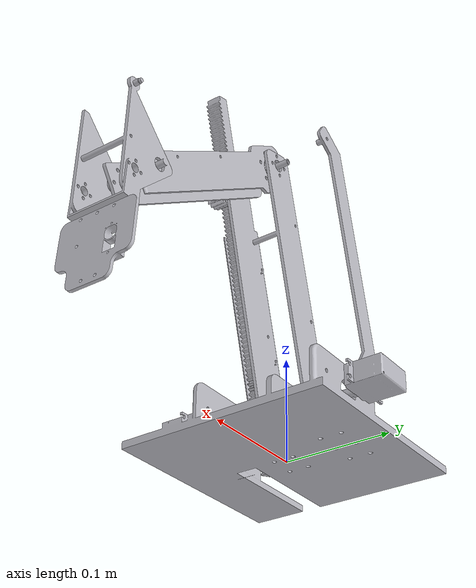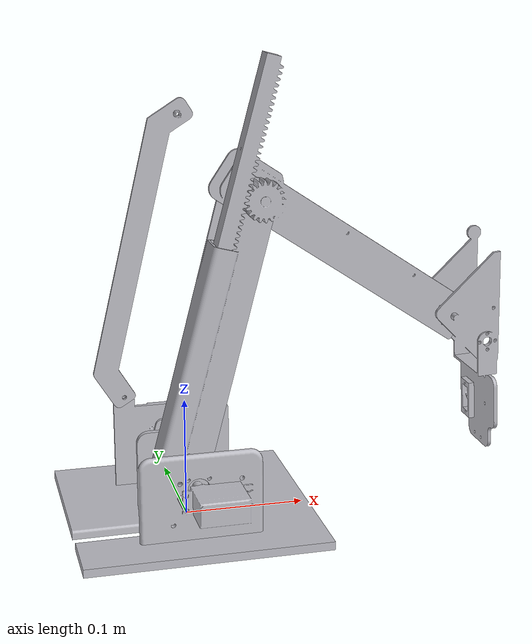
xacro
<?xml version="1.0" ?>
<robot name="test" xmlns:xacro="http://www.ros.org/wiki/xacro">

<xacro:include filename="$(find test_description)/urdf/materials.xacro" />
<xacro:include filename="$(find test_description)/urdf/test.trans" />
<xacro:include filename="$(find test_description)/urdf/test.gazebo" />

<link name="base_link">
  <inertial>
    <origin xyz="0.002627025718145887 0.0018168583679358929 0.01943654315821824" rpy="0 0 0"/>
    <mass value="3.358994137046097"/>
    <inertia ixx="0.015716" iyy="0.00938" izz="0.021587" ixy="0.000314" iyz="8.1e-05" ixz="7.2e-05"/>
  </inertial>
  <visual>
    <origin xyz="0 0 0" rpy="0 0 0"/>
    <geometry>
      <mesh filename="package://test_description/meshes/base_link.stl" scale="0.001 0.001 0.001"/>
    </geometry>
    <material name="opaque160160160"/>
  </visual>
  <collision>
    <origin xyz="0 0 0" rpy="0 0 0"/>
    <geometry>
      <mesh filename="package://test_description/meshes/base_link.stl" scale="0.001 0.001 0.001"/>
    </geometry>
  </collision>
</link>

<link name="Back_support_1">
  <inertial>
    <origin xyz="0.011723829476401205 -0.0014444361142135903 0.12489497982444198" rpy="0 0 0"/>
    <mass value="0.12966866737524385"/>
    <inertia ixx="0.000746" iyy="0.000795" izz="4.9e-05" ixy="-0.0" iyz="-1e-06" ixz="-0.000173"/>
  </inertial>
  <visual>
    <origin xyz="0.041809 -0.055227 -0.0879" rpy="0 0 0"/>
    <geometry>
      <mesh filename="package://test_description/meshes/Back_support_1.stl" scale="0.001 0.001 0.001"/>
    </geometry>
    <material name="opaque251250245"/>
  </visual>
  <collision>
    <origin xyz="0.041809 -0.055227 -0.0879" rpy="0 0 0"/>
    <geometry>
      <mesh filename="package://test_description/meshes/Back_support_1.stl" scale="0.001 0.001 0.001"/>
    </geometry>
  </collision>
</link>

<link name="Upper_Arm_v1_1">
  <inertial>
    <origin xyz="0.06084260066038855 0.018073059422100655 -0.04092014077337344" rpy="0 0 0"/>
    <mass value="0.1737351952462784"/>
    <inertia ixx="0.000377" iyy="0.000923" izz="0.000706" ixy="-7.8e-05" iyz="5.3e-05" ixz="0.000412"/>
  </inertial>
  <visual>
    <origin xyz="-0.057276 0.01888 -0.272108" rpy="0 0 0"/>
    <geometry>
      <mesh filename="package://test_description/meshes/Upper_Arm_v1_1.stl" scale="0.001 0.001 0.001"/>
    </geometry>
    <material name="opaque6815072"/>
  </visual>
  <collision>
    <origin xyz="-0.057276 0.01888 -0.272108" rpy="0 0 0"/>
    <geometry>
      <mesh filename="package://test_description/meshes/Upper_Arm_v1_1.stl" scale="0.001 0.001 0.001"/>
    </geometry>
  </collision>
</link>

<link name="Gripper_holder_1">
  <inertial>
    <origin xyz="0.02614783175447949 0.016741346037815158 -0.032533908946886514" rpy="0 0 0"/>
    <mass value="0.31885132878487776"/>
    <inertia ixx="0.000835" iyy="0.000735" izz="0.000218" ixy="-5e-06" iyz="9e-06" ixz="0.000104"/>
  </inertial>
  <visual>
    <origin xyz="-0.225725 0.008528 -0.160724" rpy="0 0 0"/>
    <geometry>
      <mesh filename="package://test_description/meshes/Gripper_holder_1.stl" scale="0.001 0.001 0.001"/>
    </geometry>
    <material name="opaque160160160"/>
  </visual>
  <collision>
    <origin xyz="-0.225725 0.008528 -0.160724" rpy="0 0 0"/>
    <geometry>
      <mesh filename="package://test_description/meshes/Gripper_holder_1.stl" scale="0.001 0.001 0.001"/>
    </geometry>
  </collision>
</link>

<link name="Lower_Arm_v1_1">
  <inertial>
    <origin xyz="0.02041623168935574 0.013152269530085525 0.09946711451008255" rpy="0 0 0"/>
    <mass value="0.6471244693244322"/>
    <inertia ixx="0.003628" iyy="0.003458" izz="0.000882" ixy="-0.000108" iyz="8.7e-05" ixz="-0.000812"/>
  </inertial>
  <visual>
    <origin xyz="0.002712 0.016362 -0.049536" rpy="0 0 0"/>
    <geometry>
      <mesh filename="package://test_description/meshes/Lower_Arm_v1_1.stl" scale="0.001 0.001 0.001"/>
    </geometry>
    <material name="opaque23217335"/>
  </visual>
  <collision>
    <origin xyz="0.002712 0.016362 -0.049536" rpy="0 0 0"/>
    <geometry>
      <mesh filename="package://test_description/meshes/Lower_Arm_v1_1.stl" scale="0.001 0.001 0.001"/>
    </geometry>
  </collision>
</link>

<link name="Geared_shaft_1">
  <inertial>
    <origin xyz="-0.00011583643525059925 0.014441824168826438 8.071508410950612e-08" rpy="0 0 0"/>
    <mass value="0.13951903287709957"/>
    <inertia ixx="2.1e-05" iyy="1.3e-05" izz="2.1e-05" ixy="0.0" iyz="-0.0" ixz="-0.0"/>
  </inertial>
  <visual>
    <origin xyz="0.002355 0.060854 -0.049536" rpy="0 0 0"/>
    <geometry>
      <mesh filename="package://test_description/meshes/Geared_shaft_1.stl" scale="0.001 0.001 0.001"/>
    </geometry>
    <material name="steel_satin"/>
  </visual>
  <collision>
    <origin xyz="0.002355 0.060854 -0.049536" rpy="0 0 0"/>
    <geometry>
      <mesh filename="package://test_description/meshes/Geared_shaft_1.stl" scale="0.001 0.001 0.001"/>
    </geometry>
  </collision>
</link>

<link name="Rack_1">
  <inertial>
    <origin xyz="-0.0037798777765754472 -3.0809250456266535e-05 -0.04188485878700296" rpy="0 0 0"/>
    <mass value="0.6058243930815651"/>
    <inertia ixx="0.006966" iyy="0.007468" izz="0.000524" ixy="-4e-06" iyz="-1.5e-05" ixz="-0.00187"/>
  </inertial>
  <visual>
    <origin xyz="-0.018716 0.038938 -0.23898" rpy="0 0 0"/>
    <geometry>
      <mesh filename="package://test_description/meshes/Rack_1.stl" scale="0.001 0.001 0.001"/>
    </geometry>
    <material name="opaque89149218"/>
  </visual>
  <collision>
    <origin xyz="-0.018716 0.038938 -0.23898" rpy="0 0 0"/>
    <geometry>
      <mesh filename="package://test_description/meshes/Rack_1.stl" scale="0.001 0.001 0.001"/>
    </geometry>
  </collision>
</link>

<joint name="Rev1" type="continuous">
  <origin xyz="-0.041809 0.055227 0.0879" rpy="0 0 0"/>
  <parent link="base_link"/>
  <child link="Back_support_1"/>
  <axis xyz="-0.008026 0.999968 0.0"/>
</joint>

<joint name="Rev4" type="continuous">
  <origin xyz="0.059988 -0.002518 0.222572" rpy="0 0 0"/>
  <parent link="Lower_Arm_v1_1"/>
  <child link="Upper_Arm_v1_1"/>
  <axis xyz="0.008026 -0.999968 -0.0"/>
</joint>

<joint name="Rev5" type="continuous">
  <origin xyz="0.168449 0.010352 -0.111384" rpy="0 0 0"/>
  <parent link="Upper_Arm_v1_1"/>
  <child link="Gripper_holder_1"/>
  <axis xyz="-0.008026 0.999968 0.0"/>
</joint>

<joint name="Rev6" type="continuous">
  <origin xyz="-0.002712 -0.016362 0.049536" rpy="0 0 0"/>
  <parent link="base_link"/>
  <child link="Lower_Arm_v1_1"/>
  <axis xyz="-0.008026 0.999968 0.0"/>
</joint>

<joint name="Rev14" type="continuous">
  <origin xyz="-0.002355 -0.060854 0.049536" rpy="0 0 0"/>
  <parent link="base_link"/>
  <child link="Geared_shaft_1"/>
  <axis xyz="0.008026 -0.999968 -0.0"/>
</joint>

<joint name="Slider24" type="prismatic">
  <origin xyz="0.021428 -0.022576 0.189444" rpy="0 0 0"/>
  <parent link="Lower_Arm_v1_1"/>
  <child link="Rack_1"/>
  <axis xyz="-0.260184 -0.002088 -0.965557"/>
  <limit upper="0.0" lower="0.0" effort="100" velocity="100"/>
</joint>

</robot>

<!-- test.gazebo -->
<robot name="test" xmlns:xacro="http://www.ros.org/wiki/xacro" >

<xacro:property name="body_color" value="Gazebo/Silver" />

<gazebo>
    <plugin name="gazebo_ros_controller" filename="libgazebo_ros_control.so">
    <robotNamespace>/test</robotNamespace>
    </plugin>
</gazebo>

<gazebo reference="base_link">
  <material>${body_color}</material>
  <mu1>0.2</mu1>
  <mu2>0.2</mu2>
  <selfCollide>true</selfCollide>
  <gravity>true</gravity>
</gazebo>

<gazebo reference="Back_support_1">
  <material>${body_color}</material>
  <mu1>0.2</mu1>
  <mu2>0.2</mu2>
  <selfCollide>true</selfCollide>
</gazebo>

<gazebo reference="Upper_Arm_v1_1">
  <material>${body_color}</material>
  <mu1>0.2</mu1>
  <mu2>0.2</mu2>
  <selfCollide>true</selfCollide>
</gazebo>

<gazebo reference="Gripper_holder_1">
  <material>${body_color}</material>
  <mu1>0.2</mu1>
  <mu2>0.2</mu2>
  <selfCollide>true</selfCollide>
</gazebo>

<gazebo reference="Lower_Arm_v1_1">
  <material>${body_color}</material>
  <mu1>0.2</mu1>
  <mu2>0.2</mu2>
  <selfCollide>true</selfCollide>
</gazebo>

<gazebo reference="Geared_shaft_1">
  <material>${body_color}</material>
  <mu1>0.2</mu1>
  <mu2>0.2</mu2>
  <selfCollide>true</selfCollide>
</gazebo>

<gazebo reference="Rack_1">
  <material>${body_color}</material>
  <mu1>0.2</mu1>
  <mu2>0.2</mu2>
  <selfCollide>true</selfCollide>
</gazebo>

</robot>
